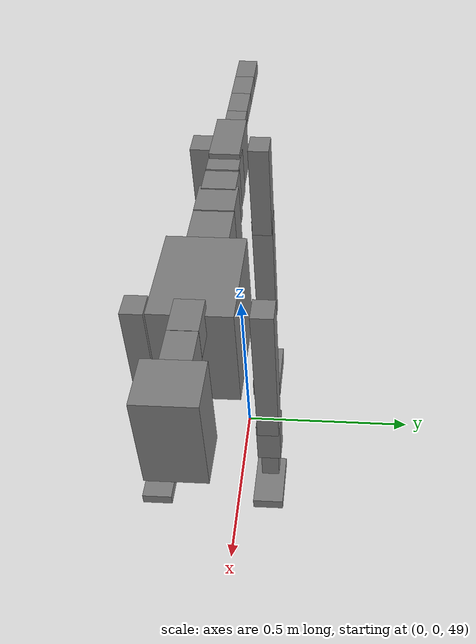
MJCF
<mujoco model="dog">

    <default>
        <joint armature="0.02" stiffness="1" damping="0.2" limited="true"/>
        <geom condim="3" friction="1 0.05 0.05" margin="0.01"/>
        <motor ctrllimited="true" ctrlrange="-1.0 1.0" forcelimited="true" gear="50"/>
    </default>

    <compiler inertiafromgeom="true" angle="radian"/>

    <option timestep="0.016" iterations="50" tolerance="1e-10" solver="Newton" jacobian="dense" cone="pyramidal"/>

    <size nconmax="20000" njmax="60000" nstack="5000000"/>
    <visual>
        <map force="0.1" zfar="30"/>
        <rgba haze="0.15 0.25 0.35 1"/>
        <quality shadowsize="2048"/>
        <global offwidth="800" offheight="800"/>
    </visual>

    <asset>
        <texture type="skybox" builtin="gradient" rgb1="0.3 0.5 0.7" rgb2="0 0 0" width="512" height="512"/>
        <texture name="texplane" type="2d" builtin="checker" rgb1=".2 .3 .4" rgb2=".1 0.15 0.2" width="512" height="512"
                 mark="cross" markrgb=".8 .8 .8"/>
        <texture name="texgeom" type="cube" builtin="flat" mark="cross" width="127" height="1278" rgb1="0.8 0.6 0.4"
                 rgb2="0.8 0.6 0.4" markrgb="1 1 1" random="0.01"/>

        <material name="matplane" reflectance="0.3" texture="texplane" texrepeat="1 1" texuniform="true"/>
        <material name="matgeom" texture="texgeom" texuniform="true" rgba="0.8 0.6 .4 1"/>
    </asset>

    <worldbody>
        <geom name="floor" pos="0 0 0" size="0 0 .25" type="plane" material="matplane" condim="3"/>

        <light directional="false" diffuse=".2 .2 .2" specular="0 0 0" pos="0 0 5" dir="0 0 -1" castshadow="false"/>
        <light mode="targetbodycom" target="torso" directional="false" diffuse=".8 .8 .8" specular="0.3 0.3 0.3"
               pos="0 0 4.0" dir="0 0 -1"/>

        <body name="root" pos="0 0 50">
            <freejoint name="root_1"/>
            <geom type="box" pos="0 0 -0.02" size="0.0774  0.0358  0.063" density="2030"/>

            <body name="spine1" pos="0.054 0 0">
                <joint name="spine1_y" axis="0 1 0" range="0 0.7" limited="true"/>
                <geom type="box" pos="0.02375 0 -0.03" size="0.04375  0.0375  0.05985" density="2030"/>

                <body name="spine2" pos="0.0612 0 0">
                    <joint name="spine2_y" axis="0 1 0" range="-0.15 0.15" limited="true"/>
                    <geom type="box" pos="0.03555  0  -0.04" size="0.04055  0.039  0.06615" density="2030"/>

                    <body name="spine3" pos="0.0730 0 0">
                        <joint name="spine3_y" axis="0 1 0" range="-0.15 0.15" limited="true"/>
                        <geom type="box" pos="0.03555  0  -0.057" size="0.04555  0.0445  0.081" density="2030"/>

                        <body name="spine4" pos="0.0780 0 0">
                            <joint name="spine4_y" axis="0 1 0" range="-0.15 0.15" limited="true"/>
                            <geom type="box" pos="0.05265  0  -0.07" size="0.05265  0.045  0.09135" density="2030"/>

                            <body name="torso" pos="0.1082 0 0">
                                <joint name="torso_y" axis="0 1 0" range="-0.15 0.15" limited="true"/>
                                <geom type="box" pos="0.11925  0  -0.085" size="0.11925  0.085  0.11745"
                                      density="2030"/>

                                <body name="neck1" pos="0.2160  0   0.0180">
                                    <joint name="neck1_y" axis="0 1 0" range="-1.2  -1" limited="true"/>
                                    <geom type="box" pos="0.0423  0  0" size="0.0423  0.03  0.036" density="2325"/>

                                    <body name="neck2" pos="0.0853  0  0">
                                        <joint name="neck2_y" axis="0 1 0" range="0.1  0" limited="true"/>
                                        <geom type="box" pos="0.0423  0  0" size="0.0423  0.03  0.036" density="2325"/>

                                        <body name="head" pos="0.0853  0  0">
                                            <joint name="head_y" axis="0 1 0" range="-0.3  -0.2" limited="true"/>
                                            <geom type="box" pos="0.0531  0  -0.055" size="0.0531  0.06  0.1044"
                                                  density="4030"/>

                                        </body>
                                    </body>
                                </body>

                                <body name="front_shoulder" pos="0.156  0   -0.0480">
                                    <joint name="front_shoulder_y" axis="0 1 0" range="-1 1.5" limited="true"/>
                                    <geom type="box" pos="0 0.13 -0.1549" size="0.0281  0.0241  0.1816" density="1158"/>
                                    <geom type="box" pos="0 -0.13 -0.1549" size="0.0281  0.0241  0.1816"
                                          density="1158"/>

                                    <body name="front_elbow" pos="0  0  -0.3099">
                                        <joint name="front_elbow_y" axis="0 1 0" range="-2 0" limited="true"/>
                                        <geom type="box" pos="0 0.13 -0.0552" size="0.0261  0.0267  0.0552"
                                              density="1081"/>
                                        <geom type="box" pos="0 -0.13 -0.0552" size="0.0261  0.0267  0.0552"
                                              density="1081"/>

                                        <body name="front_wrist" pos="0  0  -0.1104">
                                            <joint name="front_wrist_y" axis="0 1 0" range="-0.2 0" limited="true"/>
                                            <geom type="box" pos="0 0.13 -0.0432" size="0.0179  0.0199  0.0564"
                                                  density="1664"/>
                                            <geom type="box" pos="0 -0.13 -0.0432" size="0.0179  0.0199  0.0564"
                                                  density="1664"/>

                                            <body name="front_finger_end" pos="0  0  -0.0865">
                                                <joint name="front_finger_y" axis="0 1 0" range="-0.4 1"
                                                       limited="true"/>
                                                <geom type="box" pos="0.0341  0.13  0.0023"
                                                      size="0.0625  0.0341  0.0127" density="1515"/>
                                                <geom type="box" pos="0.0341  -0.13  0.0023"
                                                      size="0.0625  0.0341  0.0127" density="1515"/>

                                            </body>

                                        </body>
                                    </body>
                                </body>

                            </body>
                        </body>
                    </body>
                </body>
            </body>

            <body name="back_hip" pos="-0.03 0 -0.018">
                <joint name="back_hip_y" axis="0 1 0" range="-1.5 0.3" limited="true"/>
                <geom type="box" pos="0 0.07 -0.1048" size="0.0326  0.0256  0.1276" density="1154"/>
                <geom type="box" pos="0 -0.07 -0.1048" size="0.0326  0.0256  0.1276" density="1154"/>

                <body name="back_knee" pos="0  0  -0.2096">
                    <joint name="back_knee_y" axis="0 1 0" range="0 2.8" limited="true"/>
                    <geom type="box" pos="0 0.07 -0.1604" size="0.0275  0.0271  0.1760" density="1227"/>
                    <geom type="box" pos="0 -0.07 -0.1604" size="0.0275  0.0271  0.1760" density="1227"/>

                    <body name="back_ankle" pos="0  0  -0.3209">
                        <joint name="back_ankle_y" axis="0 1 0" range="-2.2 0" limited="true"/>
                        <geom type="box" pos="0 0.07 -0.1023" size="0.0220  0.0220  0.1135" density="1284"/>
                        <geom type="box" pos="0 -0.07 -0.1023" size="0.0220  0.0220  0.1135" density="1284"/>

                        <body name="back_toe_end" pos="0  0  -0.2045">
                            <joint name="back_toe_y" axis="0 1 0" range="-0.4 1" limited="true"/>
                            <geom type="box" pos="0.0393  0.07  -0.0109" size="0.0721  0.0393  0.0259" density="1515"/>
                            <geom type="box" pos="0.0393  -0.07  -0.0109" size="0.0721  0.0393  0.0259" density="1515"/>

                        </body>
                    </body>
                </body>
            </body>

            <body name="tail1" pos="-0.074 0 -0.006">
                <joint name="tail1_y" axis="0 1 0" range="-0.2 0.2" limited="true"/>
                <geom type="box" pos="-0.0536  0  0" size="0.045  0.025  0.0175" density="1587"/>

                <body name="tail2" pos="-0.09 0 0">
                    <joint name="tail2_y" axis="0 1 0" range="-0.2 0.2" limited="true"/>
                    <geom type="box" pos="-0.0536  0  0" size="0.045  0.025  0.0175" density="1587"/>

                    <body name="tail3" pos="-0.09 0 0">
                        <joint name="tail3_y" axis="0 1 0" range="-0.2 0.2" limited="true"/>
                        <geom type="box" pos="-0.0536  0  0" size="0.045  0.025  0.0175" density="1587"/>

                        <body name="tail4" pos="-0.09 0 0">
                            <joint name="tail4_y" axis="0 1 0" range="-0.2 0.2" limited="true"/>
                            <geom type="box" pos="-0.0536  0  0" size="0.045  0.025  0.0175" density="1587"/>

                        </body>
                    </body>
                </body>
            </body>
        </body>
    </worldbody>

    <actuator>
        <motor joint="spine1_y" forcerange="-150 150     "/>
        <motor joint="spine2_y" forcerange="-150 150     "/>
        <motor joint="spine3_y" forcerange="-150 150     "/>
        <motor joint="spine4_y" forcerange="-150 150     "/>
        <motor joint="torso_y" forcerange="-150 150     "/>
        <motor joint="neck1_y" forcerange="-100 100       "/>
        <motor joint="neck2_y" forcerange="-100 100       "/>
        <motor joint="head_y" forcerange="-150 150       "/>
        <motor joint="front_shoulder_y" forcerange="-156.03 104.36"/>
        <motor joint="front_elbow_y" forcerange="-174.74 119.58"/>
        <motor joint="front_wrist_y" forcerange="-92.05 67.18"/>
        <motor joint="front_finger_y" forcerange="-75.03 66.70"/>
        <motor joint="back_hip_y" forcerange="-286.21 254.80"/>
        <motor joint="back_knee_y" forcerange="-278.74 315.33"/>
        <motor joint="back_angle_y" forcerange="-64.62 187.43"/>
        <motor joint="back_toe_y" forcerange="-126.15 108.44"/>
        <motor joint="tail1_y" forcerange="-50 50     "/>
        <motor joint="tail2_y" forcerange="-50 50     "/>
        <motor joint="tail3_y" forcerange="-50 50     "/>
        <motor joint="tail4_y" forcerange="-50 50     "/>
    </actuator>
</mujoco>
